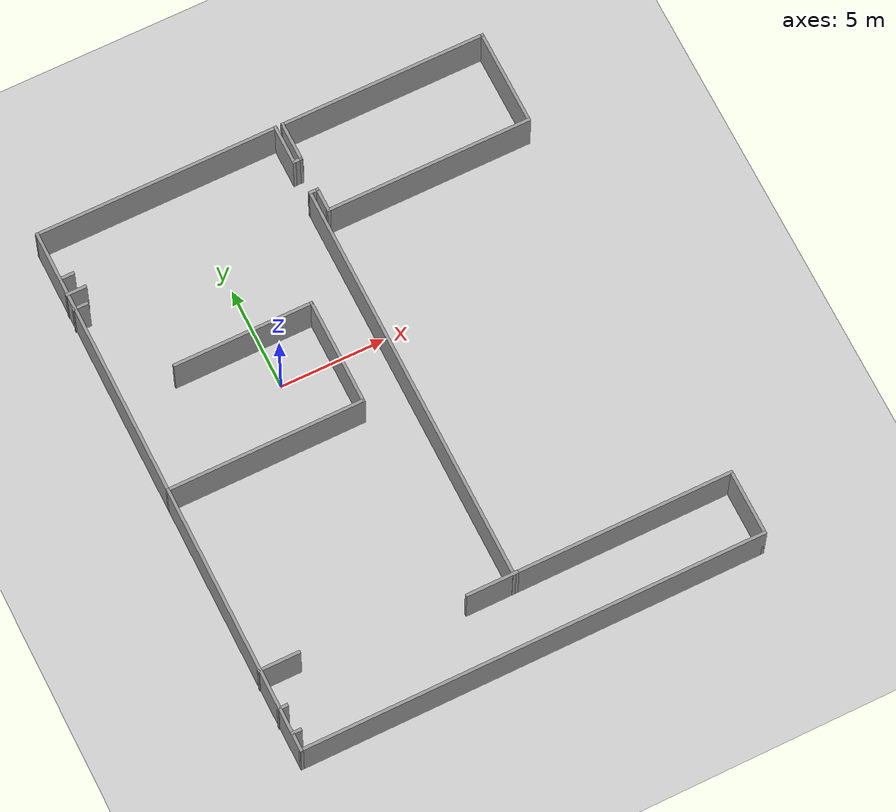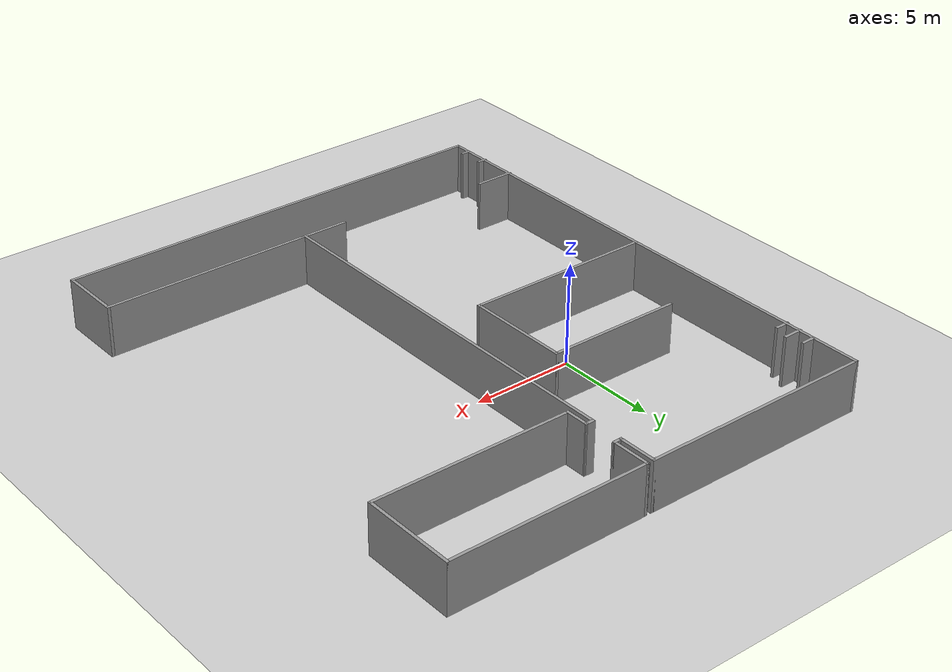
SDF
<sdf version="1.7">
 <world name="default">
  <light name="sun" type="directional">
   <pose>0 0 10 0 -0 0</pose>
   <diffuse>0.8 0.8 0.8 1</diffuse>
   <specular>0.2 0.2 0.2 1</specular>
   <attenuation>
    <range>1000</range>
    <constant>0.9</constant>
    <linear>0.01</linear>
    <quadratic>0.001</quadratic>
   </attenuation>
   <direction>-0.5 0.1 -0.9</direction>
   <spot><inner_angle>0</inner_angle><outer_angle>0</outer_angle><falloff>0</falloff></spot>
  </light>
  <model name="ground_plane">
   <static>1</static>
   <link name="link">
    <collision name="collision">
     <geometry><plane><normal>0 0 1</normal><size>100 100</size></plane></geometry>
     <surface>
      <contact><collide_bitmask>65535</collide_bitmask></contact>
      <friction><ode><mu>100</mu><mu2>50</mu2></ode></friction>
     </surface>
    </collision>
    <visual name="visual">
     <cast_shadows>0</cast_shadows>
     <geometry><plane><normal>0 0 1</normal><size>100 100</size></plane></geometry>
     <material>
      <script><uri>file://media/materials/scripts/gazebo.material</uri><name>Gazebo/Grey</name></script>
     </material>
    </visual>
   </link>
  </model>
  <gravity>0 0 -9.8</gravity>
  <magnetic_field>6e-06 2.3e-05 -4.2e-05</magnetic_field>
  <atmosphere type="adiabatic"/>
  <physics type="ode">
   <max_step_size>0.001</max_step_size>
   <real_time_factor>1</real_time_factor>
   <real_time_update_rate>1000</real_time_update_rate>
  </physics>
  <scene><ambient>0.4 0.4 0.4 1</ambient><background>0.7 0.7 0.7 1</background><shadows>1</shadows></scene>
  <audio><device>default</device></audio>
  <spherical_coordinates>
   <surface_model>EARTH_WGS84</surface_model>
   <latitude_deg>0</latitude_deg>
   <longitude_deg>0</longitude_deg>
   <elevation>0</elevation>
   <heading_deg>0</heading_deg>
  </spherical_coordinates>
  <model name="my_bot">
   <link name="base_link">
    <inertial>
     <pose>0.058676 0 0.043869 0 -0 0</pose>
     <mass>0.701</mass>
     <inertia>
      <ixx>0.00324724</ixx>
      <ixy>0</ixy>
      <ixz>0.000339625</ixz>
      <iyy>0.00355537</iyy>
      <iyz>0</iyz>
      <izz>0.00467089</izz>
     </inertia>
    </inertial>
    <collision name="base_link_fixed_joint_lump__chassis_collision">
     <pose>0.05251 0 0.037505 0 -0 0</pose>
     <geometry><box><size>0.225 0.225 0.07501</size></box></geometry>
    </collision>
    <collision name="base_link_fixed_joint_lump__caster_wheel_collision_1">
     <pose>0.10876 0 0 0 -0 0</pose>
     <geometry><sphere><radius>0.04</radius></sphere></geometry>
     <surface><friction><ode><mu>0.001</mu><mu2>0.001</mu2></ode></friction></surface>
    </collision>
    <collision name="base_link_fixed_joint_lump__laser_frame_collision_2">
     <pose>0.04001 0 0.12 0 -0 0</pose>
     <geometry><cylinder><length>0.025</length><radius>0.04</radius></cylinder></geometry>
    </collision>
    <collision name="base_link_fixed_joint_lump__imu_link_collision_3">
     <geometry><box><size>0.001 0.001 0.001</size></box></geometry>
    </collision>
    <visual name="base_link_fixed_joint_lump__chassis_visual">
     <pose>0.05251 0 0.037505 0 -0 0</pose>
     <geometry><box><size>0.225 0.225 0.07501</size></box></geometry>
     <material>
      <script><name>Gazebo/Blue</name><uri>file://media/materials/scripts/gazebo.material</uri></script>
     </material>
    </visual>
    <visual name="base_link_fixed_joint_lump__camera_link_visual_1">
     <pose>0.14001 0 0.10285 0 -0 0</pose>
     <geometry><box><size>0.005 0.025 0.025</size></box></geometry>
     <material>
      <script><name>Gazebo/Green</name><uri>file://media/materials/scripts/gazebo.material</uri></script>
     </material>
    </visual>
    <visual name="base_link_fixed_joint_lump__caster_wheel_visual_2">
     <pose>0.10876 0 0 0 -0 0</pose>
     <geometry><sphere><radius>0.04</radius></sphere></geometry>
     <material>
      <script><name>Gazebo/White</name><uri>file://media/materials/scripts/gazebo.material</uri></script>
     </material>
    </visual>
    <visual name="base_link_fixed_joint_lump__laser_frame_visual_3">
     <pose>0.04001 0 0.12 0 -0 0</pose>
     <geometry><cylinder><length>0.025</length><radius>0.04</radius></cylinder></geometry>
     <material>
      <script><name>Gazebo/Red</name><uri>file://media/materials/scripts/gazebo.material</uri></script>
     </material>
    </visual>
    <visual name="base_link_fixed_joint_lump__imu_link_visual_4">
     <geometry><box><size>0.001 0.001 0.001</size></box></geometry>
    </visual>
    <sensor name="camera" type="camera">
     <visualize>1</visualize>
     <update_rate>10</update_rate>
     <camera>
      <horizontal_fov>1.089</horizontal_fov>
      <image><format>R8G8B8</format><width>640</width><height>480</height></image>
      <clip><near>0.05</near><far>8</far></clip>
     </camera>
     <plugin name="camera_controller" filename="libgazebo_ros_camera.so">
      <frame_name>camera_link_optical</frame_name>
     </plugin>
     <pose>0.14001 0 0.10285 0 -0 0</pose>
    </sensor>
    <sensor name="laser" type="ray">
     <visualize>0</visualize>
     <update_rate>10</update_rate>
     <ray>
      <scan>
       <horizontal>
        <samples>360</samples>
        <min_angle>-3.14</min_angle>
        <max_angle>3.14</max_angle>
        <resolution>1</resolution>
       </horizontal>
       <vertical><samples>1</samples><min_angle>0</min_angle><max_angle>0</max_angle></vertical>
      </scan>
      <range><min>0.075</min><max>12</max></range>
     </ray>
     <plugin name="laser_controller" filename="libgazebo_ros_ray_sensor.so">
      <ros><argument>~/out:=scan</argument></ros>
      <output_type>sensor_msgs/LaserScan</output_type>
      <frame_name>laser_frame</frame_name>
     </plugin>
     <pose>0.04001 0 0.12 0 -0 0</pose>
    </sensor>
    <sensor name="imu_sensor" type="imu">
     <plugin name="imu_plugin" filename="libgazebo_ros_imu_sensor.so">
      <initial_orientation_as_reference>0</initial_orientation_as_reference>
      <frame_name>imu_link</frame_name>
      <ros><namespace>/imu</namespace><remapping>~/out:=data</remapping></ros>
     </plugin>
     <always_on>1</always_on>
     <update_rate>100</update_rate>
     <visualize>1</visualize>
     <imu>
      <angular_velocity>
       <x>
        <noise type="gaussian">
         <mean>0</mean>
         <stddev>0.0002</stddev>
         <bias_mean>7.5e-06</bias_mean>
         <bias_stddev>8e-07</bias_stddev>
        </noise>
       </x>
       <y>
        <noise type="gaussian">
         <mean>0</mean>
         <stddev>0.0002</stddev>
         <bias_mean>7.5e-06</bias_mean>
         <bias_stddev>8e-07</bias_stddev>
        </noise>
       </y>
       <z>
        <noise type="gaussian">
         <mean>0</mean>
         <stddev>0.0002</stddev>
         <bias_mean>7.5e-06</bias_mean>
         <bias_stddev>8e-07</bias_stddev>
        </noise>
       </z>
      </angular_velocity>
      <linear_acceleration>
       <x>
        <noise type="gaussian">
         <mean>0</mean>
         <stddev>0.017</stddev>
         <bias_mean>0.1</bias_mean>
         <bias_stddev>0.001</bias_stddev>
        </noise>
       </x>
       <y>
        <noise type="gaussian">
         <mean>0</mean>
         <stddev>0.017</stddev>
         <bias_mean>0.1</bias_mean>
         <bias_stddev>0.001</bias_stddev>
        </noise>
       </y>
       <z>
        <noise type="gaussian">
         <mean>0</mean>
         <stddev>0.017</stddev>
         <bias_mean>0.1</bias_mean>
         <bias_stddev>0.001</bias_stddev>
        </noise>
       </z>
      </linear_acceleration>
     </imu>
    </sensor>
   </link>
   <joint name="left_wheel_joint" type="revolute">
    <pose relative_to="base_link">0 0.11975 0 -1.5708 0 0</pose>
    <parent>base_link</parent>
    <child>left_wheel</child>
    <axis>
     <xyz>0 0 1</xyz>
     <limit><lower>-1e+16</lower><upper>1e+16</upper></limit>
     <dynamics><spring_reference>0</spring_reference><spring_stiffness>0</spring_stiffness></dynamics>
    </axis>
   </joint>
   <link name="left_wheel">
    <pose relative_to="left_wheel_joint">0 0 0 0 -0 0</pose>
    <inertial>
     <mass>0.1</mass>
     <inertia>
      <ixx>4.08333e-05</ixx>
      <ixy>0</ixy>
      <ixz>0</ixz>
      <iyy>4.08333e-05</iyy>
      <iyz>0</iyz>
      <izz>8e-05</izz>
     </inertia>
    </inertial>
    <collision name="left_wheel_collision">
     <geometry><cylinder><length>0.01</length><radius>0.04</radius></cylinder></geometry>
    </collision>
    <visual name="left_wheel_visual">
     <geometry><cylinder><length>0.01</length><radius>0.04</radius></cylinder></geometry>
     <material>
      <script><name>Gazebo/Black</name><uri>file://media/materials/scripts/gazebo.material</uri></script>
     </material>
    </visual>
   </link>
   <joint name="right_wheel_joint" type="revolute">
    <pose relative_to="base_link">0 -0.11975 0 1.5708 -0 0</pose>
    <parent>base_link</parent>
    <child>right_wheel</child>
    <axis>
     <xyz>0 0 -1</xyz>
     <limit><lower>-1e+16</lower><upper>1e+16</upper></limit>
     <dynamics><spring_reference>0</spring_reference><spring_stiffness>0</spring_stiffness></dynamics>
    </axis>
   </joint>
   <link name="right_wheel">
    <pose relative_to="right_wheel_joint">0 0 0 0 -0 0</pose>
    <inertial>
     <mass>0.1</mass>
     <inertia>
      <ixx>4.08333e-05</ixx>
      <ixy>0</ixy>
      <ixz>0</ixz>
      <iyy>4.08333e-05</iyy>
      <iyz>0</iyz>
      <izz>8e-05</izz>
     </inertia>
    </inertial>
    <collision name="right_wheel_collision">
     <geometry><cylinder><length>0.01</length><radius>0.04</radius></cylinder></geometry>
    </collision>
    <visual name="right_wheel_visual">
     <geometry><cylinder><length>0.01</length><radius>0.04</radius></cylinder></geometry>
     <material>
      <script><name>Gazebo/Black</name><uri>file://media/materials/scripts/gazebo.material</uri></script>
     </material>
    </visual>
   </link>
   <static>0</static>
   <plugin name="gazebo_ros2_control" filename="libgazebo_ros2_control.so">
    <parameters>/home/praveenrav702/comp_ws/install/autonomous_diffdrive_robot/share/autonomous_diffdrive_robot/config/my_controllers.yaml</parameters>
    <parameters>/home/praveenrav702/comp_ws/install/autonomous_diffdrive_robot/share/autonomous_diffdrive_robot/config/gaz_ros2_ctl_use_sim.yaml</parameters>
   </plugin>
   <pose>0.001317 0.000104 0.04 0 2e-06 0.011968</pose>
  </model>
  <model name="ChicagoPFMap">
   <pose>4.15885 -2.92768 0 0 -0 0</pose>
   <link name="Wall_14">
    <collision name="Wall_14_Collision">
     <geometry><box><size>6.75 0.15 2.5</size></box></geometry>
     <pose>0 0 1.25 0 -0 0</pose>
    </collision>
    <visual name="Wall_14_Visual">
     <pose>0 0 1.25 0 -0 0</pose>
     <geometry><box><size>6.75 0.15 2.5</size></box></geometry>
     <material>
      <script><uri>file://media/materials/scripts/gazebo.material</uri><name>Gazebo/Grey</name></script>
      <ambient>1 1 1 1</ambient>
     </material>
     <meta><layer>0</layer></meta>
    </visual>
    <pose>-4.97594 4.975 0 0 -0 0</pose>
   </link>
   <link name="Wall_17">
    <collision name="Wall_17_Collision">
     <geometry><box><size>5.25 0.15 2.5</size></box></geometry>
     <pose>0 0 1.25 0 -0 0</pose>
    </collision>
    <visual name="Wall_17_Visual">
     <pose>0 0 1.25 0 -0 0</pose>
     <geometry><box><size>5.25 0.15 2.5</size></box></geometry>
     <material>
      <script><uri>file://media/materials/scripts/gazebo.material</uri><name>Gazebo/Grey</name></script>
      <ambient>1 1 1 1</ambient>
     </material>
     <meta><layer>0</layer></meta>
    </visual>
    <pose>-1.67594 2.425 0 0 -0 -1.5708</pose>
   </link>
   <link name="Wall_18">
    <collision name="Wall_18_Collision">
     <geometry><box><size>9.5 0.15 2.5</size></box></geometry>
     <pose>0 0 1.25 0 -0 0</pose>
    </collision>
    <visual name="Wall_18_Visual">
     <pose>0 0 1.25 0 -0 0</pose>
     <geometry><box><size>9.5 0.15 2.5</size></box></geometry>
     <material>
      <script><uri>file://media/materials/scripts/gazebo.material</uri><name>Gazebo/Grey</name></script>
      <ambient>1 1 1 1</ambient>
     </material>
     <meta><layer>0</layer></meta>
    </visual>
    <pose>-6.35094 -0.125 0 0 -0 3.14159</pose>
   </link>
   <link name="Wall_24">
    <collision name="Wall_24_Collision">
     <geometry><box><size>13.5 0.15 2.5</size></box></geometry>
     <pose>0 0 1.25 0 -0 0</pose>
    </collision>
    <visual name="Wall_24_Visual">
     <pose>0 0 1.25 0 -0 0</pose>
     <geometry><box><size>13.5 0.15 2.5</size></box></geometry>
     <material>
      <script><uri>file://media/materials/scripts/gazebo.material</uri><name>Gazebo/Grey</name></script>
      <ambient>1 1 1 1</ambient>
     </material>
     <meta><layer>0</layer></meta>
    </visual>
    <pose>-11.0259 6.55 0 0 -0 1.5708</pose>
   </link>
   <link name="Wall_25">
    <collision name="Wall_25_Collision">
     <geometry><box><size>11.75 0.15 2.5</size></box></geometry>
     <pose>0 0 1.25 0 -0 0</pose>
    </collision>
    <visual name="Wall_25_Visual">
     <pose>0 0 1.25 0 -0 0</pose>
     <geometry><box><size>11.75 0.15 2.5</size></box></geometry>
     <material>
      <script><uri>file://media/materials/scripts/gazebo.material</uri><name>Gazebo/Grey</name></script>
      <ambient>1 1 1 1</ambient>
     </material>
     <meta><layer>0</layer></meta>
    </visual>
    <pose>-5.22594 13.225 0 0 -0 0</pose>
   </link>
   <link name="Wall_38">
    <collision name="Wall_38_Collision">
     <geometry><box><size>2 0.15 2.5</size></box></geometry>
     <pose>0 0 1.25 0 -0 0</pose>
    </collision>
    <visual name="Wall_38_Visual">
     <pose>0 0 1.25 0 -0 0</pose>
     <geometry><box><size>2 0.15 2.5</size></box></geometry>
     <material>
      <script><uri>file://media/materials/scripts/gazebo.material</uri><name>Gazebo/Grey</name></script>
      <ambient>1 1 1 1</ambient>
     </material>
     <meta><layer>0</layer></meta>
    </visual>
    <pose>0.574064 12.3 0 0 -0 -1.5708</pose>
   </link>
   <link name="Wall_39">
    <collision name="Wall_39_Collision">
     <geometry><box><size>0.5 0.15 2.5</size></box></geometry>
     <pose>0 0 1.25 0 -0 0</pose>
    </collision>
    <visual name="Wall_39_Visual">
     <pose>0 0 1.25 0 -0 0</pose>
     <geometry><box><size>0.5 0.15 2.5</size></box></geometry>
     <material>
      <script><uri>file://media/materials/scripts/gazebo.material</uri><name>Gazebo/Grey</name></script>
      <ambient>1 1 1 1</ambient>
     </material>
     <meta><layer>0</layer></meta>
    </visual>
    <pose>0.749064 11.375 0 0 -0 0</pose>
   </link>
   <link name="Wall_40">
    <collision name="Wall_40_Collision">
     <geometry><box><size>2 0.15 2.5</size></box></geometry>
     <pose>0 0 1.25 0 -0 0</pose>
    </collision>
    <visual name="Wall_40_Visual">
     <pose>0 0 1.25 0 -0 0</pose>
     <geometry><box><size>2 0.15 2.5</size></box></geometry>
     <material>
      <script><uri>file://media/materials/scripts/gazebo.material</uri><name>Gazebo/Grey</name></script>
      <ambient>1 1 1 1</ambient>
     </material>
     <meta><layer>0</layer></meta>
    </visual>
    <pose>0.924064 12.3 0 0 -0 1.5708</pose>
   </link>
   <link name="Wall_41">
    <collision name="Wall_41_Collision">
     <geometry><box><size>10 0.15 2.5</size></box></geometry>
     <pose>0 0 1.25 0 -0 0</pose>
    </collision>
    <visual name="Wall_41_Visual">
     <pose>0 0 1.25 0 -0 0</pose>
     <geometry><box><size>10 0.15 2.5</size></box></geometry>
     <material>
      <script><uri>file://media/materials/scripts/gazebo.material</uri><name>Gazebo/Grey</name></script>
      <ambient>1 1 1 1</ambient>
     </material>
     <meta><layer>0</layer></meta>
    </visual>
    <pose>5.84906 13.225 0 0 -0 0</pose>
   </link>
   <link name="Wall_44">
    <collision name="Wall_44_Collision">
     <geometry><box><size>4.75 0.15 2.5</size></box></geometry>
     <pose>0 0 1.25 0 -0 0</pose>
    </collision>
    <visual name="Wall_44_Visual">
     <pose>0 0 1.25 0 -0 0</pose>
     <geometry><box><size>4.75 0.15 2.5</size></box></geometry>
     <material>
      <script><uri>file://media/materials/scripts/gazebo.material</uri><name>Gazebo/Grey</name></script>
      <ambient>1 1 1 1</ambient>
     </material>
     <meta><layer>0</layer></meta>
    </visual>
    <pose>10.7741 10.925 0 0 -0 -1.5708</pose>
   </link>
   <link name="Wall_45">
    <collision name="Wall_45_Collision">
     <geometry><box><size>10 0.15 2.5</size></box></geometry>
     <pose>0 0 1.25 0 -0 0</pose>
    </collision>
    <visual name="Wall_45_Visual">
     <pose>0 0 1.25 0 -0 0</pose>
     <geometry><box><size>10 0.15 2.5</size></box></geometry>
     <material>
      <script><uri>file://media/materials/scripts/gazebo.material</uri><name>Gazebo/Grey</name></script>
      <ambient>1 1 1 1</ambient>
     </material>
     <meta><layer>0</layer></meta>
    </visual>
    <pose>5.84906 8.625 0 0 -0 3.14159</pose>
   </link>
   <link name="Wall_47">
    <collision name="Wall_47_Collision">
     <geometry><box><size>1.25 0.15 2.5</size></box></geometry>
     <pose>0 0 1.25 0 -0 0</pose>
    </collision>
    <visual name="Wall_47_Visual">
     <pose>0 0 1.25 0 -0 0</pose>
     <geometry><box><size>1.25 0.15 2.5</size></box></geometry>
     <material>
      <script><uri>file://media/materials/scripts/gazebo.material</uri><name>Gazebo/Grey</name></script>
      <ambient>1 1 1 1</ambient>
     </material>
     <meta><layer>0</layer></meta>
    </visual>
    <pose>0.924064 9.175 0 0 -0 1.5708</pose>
   </link>
   <link name="Wall_48">
    <collision name="Wall_48_Collision">
     <geometry><box><size>0.5 0.15 2.5</size></box></geometry>
     <pose>0 0 1.25 0 -0 0</pose>
    </collision>
    <visual name="Wall_48_Visual">
     <pose>0 0 1.25 0 -0 0</pose>
     <geometry><box><size>0.5 0.15 2.5</size></box></geometry>
     <material>
      <script><uri>file://media/materials/scripts/gazebo.material</uri><name>Gazebo/Grey</name></script>
      <ambient>1 1 1 1</ambient>
     </material>
     <meta><layer>0</layer></meta>
    </visual>
    <pose>0.749064 9.72526 0 0 -0 3.1401</pose>
   </link>
   <link name="Wall_49">
    <collision name="Wall_49_Collision">
     <geometry><box><size>20 0.15 2.5</size></box></geometry>
     <pose>0 0 1.25 0 -0 0</pose>
    </collision>
    <visual name="Wall_49_Visual">
     <pose>0 0 1.25 0 -0 0</pose>
     <geometry><box><size>20 0.15 2.5</size></box></geometry>
     <material>
      <script><uri>file://media/materials/scripts/gazebo.material</uri><name>Gazebo/Grey</name></script>
      <ambient>1 1 1 1</ambient>
     </material>
     <meta><layer>0</layer></meta>
    </visual>
    <pose>0.574064 -0.210976 0 0 -0 -1.5708</pose>
   </link>
   <link name="Wall_54">
    <collision name="Wall_54_Collision">
     <geometry><box><size>1 0.15 2.5</size></box></geometry>
     <pose>0 0 1.25 0 -0 0</pose>
    </collision>
    <visual name="Wall_54_Visual">
     <pose>0 0 1.25 0 -0 0</pose>
     <geometry><box><size>1 0.15 2.5</size></box></geometry>
     <material>
      <script><uri>file://media/materials/scripts/gazebo.material</uri><name>Gazebo/Grey</name></script>
      <ambient>1 1 1 1</ambient>
     </material>
     <meta><layer>0</layer></meta>
    </visual>
    <pose>-10.6316 10.0515 0 0 -0 0</pose>
   </link>
   <link name="Wall_56">
    <collision name="Wall_56_Collision">
     <geometry><box><size>0.75 0.15 2.5</size></box></geometry>
     <pose>0 0 1.25 0 -0 0</pose>
    </collision>
    <visual name="Wall_56_Visual">
     <pose>0 0 1.25 0 -0 0</pose>
     <geometry><box><size>0.75 0.15 2.5</size></box></geometry>
     <material>
      <script><uri>file://media/materials/scripts/gazebo.material</uri><name>Gazebo/Grey</name></script>
      <ambient>1 1 1 1</ambient>
     </material>
     <meta><layer>0</layer></meta>
    </visual>
    <pose>-10.7741 9.29941 0 0 -0 0</pose>
   </link>
   <link name="Wall_58">
    <collision name="Wall_58_Collision">
     <geometry><box><size>0.75 0.15 2.5</size></box></geometry>
     <pose>0 0 1.25 0 -0 0</pose>
    </collision>
    <visual name="Wall_58_Visual">
     <pose>0 0 1.25 0 -0 0</pose>
     <geometry><box><size>0.75 0.15 2.5</size></box></geometry>
     <material>
      <script><uri>file://media/materials/scripts/gazebo.material</uri><name>Gazebo/Grey</name></script>
      <ambient>1 1 1 1</ambient>
     </material>
     <meta><layer>0</layer></meta>
    </visual>
    <pose>-10.7216 10.856 0 0 -0 0</pose>
   </link>
   <link name="Wall_60">
    <collision name="Wall_60_Collision">
     <geometry><box><size>13.25 0.15 2.5</size></box></geometry>
     <pose>0 0 1.25 0 -0 0</pose>
    </collision>
    <visual name="Wall_60_Visual">
     <pose>0 0 1.25 0 -0 0</pose>
     <geometry><box><size>13.25 0.15 2.5</size></box></geometry>
     <material>
      <script><uri>file://media/materials/scripts/gazebo.material</uri><name>Gazebo/Grey</name></script>
      <ambient>1 1 1 1</ambient>
     </material>
     <meta><layer>0</layer></meta>
    </visual>
    <pose>-11.0259 -6.675 0 0 -0 -1.5708</pose>
   </link>
   <link name="Wall_62">
    <collision name="Wall_62_Collision">
     <geometry><box><size>22.25 0.15 2.5</size></box></geometry>
     <pose>0 0 1.25 0 -0 0</pose>
    </collision>
    <visual name="Wall_62_Visual">
     <pose>0 0 1.25 0 -0 0</pose>
     <geometry><box><size>22.25 0.15 2.5</size></box></geometry>
     <material>
      <script><uri>file://media/materials/scripts/gazebo.material</uri><name>Gazebo/Grey</name></script>
      <ambient>1 1 1 1</ambient>
     </material>
     <meta><layer>0</layer></meta>
    </visual>
    <pose>0.024064 -13.225 0 0 -0 0</pose>
   </link>
   <link name="Wall_63">
    <collision name="Wall_63_Collision">
     <geometry><box><size>3.25 0.15 2.5</size></box></geometry>
     <pose>0 0 1.25 0 -0 0</pose>
    </collision>
    <visual name="Wall_63_Visual">
     <pose>0 0 1.25 0 -0 0</pose>
     <geometry><box><size>3.25 0.15 2.5</size></box></geometry>
     <material>
      <script><uri>file://media/materials/scripts/gazebo.material</uri><name>Gazebo/Grey</name></script>
      <ambient>1 1 1 1</ambient>
     </material>
     <meta><layer>0</layer></meta>
    </visual>
    <pose>11.0741 -11.675 0 0 -0 1.5708</pose>
   </link>
   <link name="Wall_64">
    <collision name="Wall_64_Collision">
     <geometry><box><size>10.5 0.15 2.5</size></box></geometry>
     <pose>0 0 1.25 0 -0 0</pose>
    </collision>
    <visual name="Wall_64_Visual">
     <pose>0 0 1.25 0 -0 0</pose>
     <geometry><box><size>10.5 0.15 2.5</size></box></geometry>
     <material>
      <script><uri>file://media/materials/scripts/gazebo.material</uri><name>Gazebo/Grey</name></script>
      <ambient>1 1 1 1</ambient>
     </material>
     <meta><layer>0</layer></meta>
    </visual>
    <pose>5.89906 -10.125 0 0 -0 3.14159</pose>
   </link>
   <link name="Wall_66">
    <collision name="Wall_66_Collision">
     <geometry><box><size>2 0.15 2.5</size></box></geometry>
     <pose>0 0 1.25 0 -0 0</pose>
    </collision>
    <visual name="Wall_66_Visual">
     <pose>0 0 1.25 0 -0 0</pose>
     <geometry><box><size>2 0.15 2.5</size></box></geometry>
     <material>
      <script><uri>file://media/materials/scripts/gazebo.material</uri><name>Gazebo/Grey</name></script>
      <ambient>1 1 1 1</ambient>
     </material>
     <meta><layer>0</layer></meta>
    </visual>
    <pose>-10.1377 -9.25399 0 0 -0 0</pose>
   </link>
   <link name="Wall_69">
    <collision name="Wall_69_Collision">
     <geometry><box><size>0.5 0.15 2.5</size></box></geometry>
     <pose>0 0 1.25 0 -0 0</pose>
    </collision>
    <visual name="Wall_69_Visual">
     <pose>0 0 1.25 0 -0 0</pose>
     <geometry><box><size>0.5 0.15 2.5</size></box></geometry>
     <material>
      <script><uri>file://media/materials/scripts/gazebo.material</uri><name>Gazebo/Grey</name></script>
      <ambient>1 1 1 1</ambient>
     </material>
     <meta><layer>0</layer></meta>
    </visual>
    <pose>-10.8877 -11.1644 0 0 -0 0</pose>
   </link>
   <link name="Wall_71">
    <collision name="Wall_71_Collision">
     <geometry><box><size>0.5 0.15 2.5</size></box></geometry>
     <pose>0 0 1.25 0 -0 0</pose>
    </collision>
    <visual name="Wall_71_Visual">
     <pose>0 0 1.25 0 -0 0</pose>
     <geometry><box><size>0.5 0.15 2.5</size></box></geometry>
     <material>
      <script><uri>file://media/materials/scripts/gazebo.material</uri><name>Gazebo/Grey</name></script>
      <ambient>1 1 1 1</ambient>
     </material>
     <meta><layer>0</layer></meta>
    </visual>
    <pose>-10.8497 -12.3943 0 0 -0 0</pose>
   </link>
   <link name="Wall_73">
    <collision name="Wall_73_Collision">
     <geometry><box><size>2.5 0.15 2.5</size></box></geometry>
     <pose>0 0 1.25 0 -0 0</pose>
    </collision>
    <visual name="Wall_73_Visual">
     <pose>0 0 1.25 0 -0 0</pose>
     <geometry><box><size>2.5 0.15 2.5</size></box></geometry>
     <material>
      <script><uri>file://media/materials/scripts/gazebo.material</uri><name>Gazebo/Grey</name></script>
      <ambient>1 1 1 1</ambient>
     </material>
     <meta><layer>0</layer></meta>
    </visual>
    <pose>-0.450936 -10.125 0 0 -0 3.14159</pose>
   </link>
   <static>1</static>
  </model>
 </world>
</sdf>
